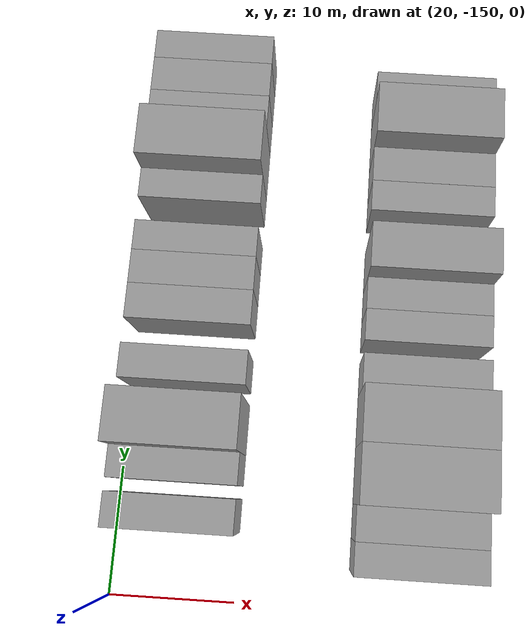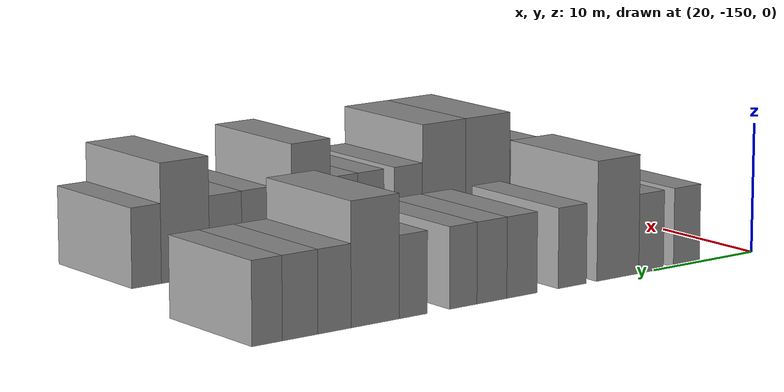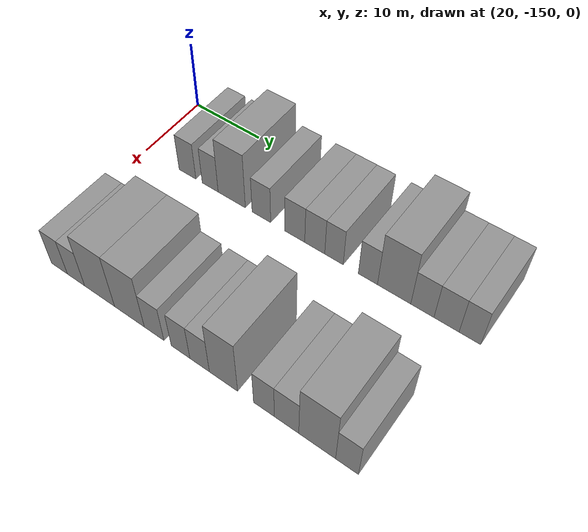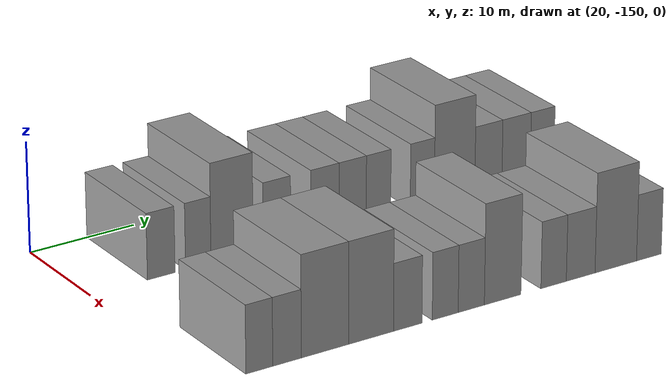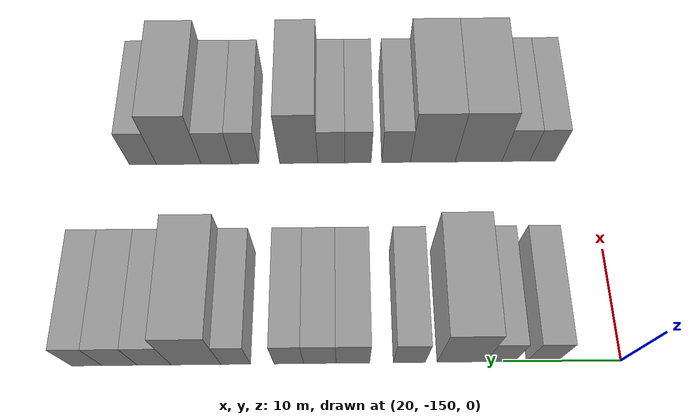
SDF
<sdf version="1.6">
 <world name="default">
  <model name="building_12">
   <static>1</static>
   <pose>25.0000 -143.2816 0 0.000000 0.000000 0.000000</pose>
   <link name="link">
    <pose>0 0 3.00 0 0 0</pose>
    <collision name="collision"><geometry><box><size>10.0000 2.6540 6.0000</size></box></geometry></collision>
    <visual name="visual">
     <cast_shadows>0</cast_shadows>
     <geometry><box><size>10.0000 2.6540 6.0000</size></box></geometry>
     <material>
      <script>
       <uri>model://grey_wall/materials/scripts</uri>
       <uri>model://grey_wall/materials/textures</uri>
       <name>vrc/grey_wall</name>
      </script>
     </material>
    </visual>
   </link>
  </model>
  <model name="building_13">
   <static>1</static>
   <pose>25.0000 -139.7228 0 0.000000 0.000000 0.000000</pose>
   <link name="link">
    <pose>0 0 3.00 0 0 0</pose>
    <collision name="collision"><geometry><box><size>10.0000 2.4635 6.0000</size></box></geometry></collision>
    <visual name="visual">
     <cast_shadows>0</cast_shadows>
     <geometry><box><size>10.0000 2.4635 6.0000</size></box></geometry>
     <material>
      <script>
       <uri>model://grey_wall/materials/scripts</uri>
       <uri>model://grey_wall/materials/textures</uri>
       <name>vrc/grey_wall</name>
      </script>
     </material>
    </visual>
   </link>
  </model>
  <model name="building_14">
   <static>1</static>
   <pose>25.0000 -136.4352 0 0.000000 0.000000 0.000000</pose>
   <link name="link">
    <pose>0 0 4.50 0 0 0</pose>
    <collision name="collision"><geometry><box><size>10.0000 4.1118 9.0000</size></box></geometry></collision>
    <visual name="visual">
     <cast_shadows>0</cast_shadows>
     <geometry><box><size>10.0000 4.1118 9.0000</size></box></geometry>
     <material>
      <script>
       <uri>model://grey_wall/materials/scripts</uri>
       <uri>model://grey_wall/materials/textures</uri>
       <name>vrc/grey_wall</name>
      </script>
     </material>
    </visual>
   </link>
  </model>
  <model name="building_15">
   <static>1</static>
   <pose>25.0000 -132.0211 0 0.000000 0.000000 0.000000</pose>
   <link name="link">
    <pose>0 0 3.00 0 0 0</pose>
    <collision name="collision"><geometry><box><size>10.0000 2.7164 6.0000</size></box></geometry></collision>
    <visual name="visual">
     <cast_shadows>0</cast_shadows>
     <geometry><box><size>10.0000 2.7164 6.0000</size></box></geometry>
     <material>
      <script>
       <uri>model://grey_wall/materials/scripts</uri>
       <uri>model://grey_wall/materials/textures</uri>
       <name>vrc/grey_wall</name>
      </script>
     </material>
    </visual>
   </link>
  </model>
  <model name="building_16">
   <static>1</static>
   <pose>25.0000 -127.2485 0 0.000000 0.000000 0.000000</pose>
   <link name="link">
    <pose>0 0 3.00 0 0 0</pose>
    <collision name="collision"><geometry><box><size>10.0000 2.8289 6.0000</size></box></geometry></collision>
    <visual name="visual">
     <cast_shadows>0</cast_shadows>
     <geometry><box><size>10.0000 2.8289 6.0000</size></box></geometry>
     <material>
      <script>
       <uri>model://grey_wall/materials/scripts</uri>
       <uri>model://grey_wall/materials/textures</uri>
       <name>vrc/grey_wall</name>
      </script>
     </material>
    </visual>
   </link>
  </model>
  <model name="building_17">
   <static>1</static>
   <pose>25.0000 -124.4557 0 0.000000 0.000000 0.000000</pose>
   <link name="link">
    <pose>0 0 3.00 0 0 0</pose>
    <collision name="collision"><geometry><box><size>10.0000 2.7568 6.0000</size></box></geometry></collision>
    <visual name="visual">
     <cast_shadows>0</cast_shadows>
     <geometry><box><size>10.0000 2.7568 6.0000</size></box></geometry>
     <material>
      <script>
       <uri>model://grey_wall/materials/scripts</uri>
       <uri>model://grey_wall/materials/textures</uri>
       <name>vrc/grey_wall</name>
      </script>
     </material>
    </visual>
   </link>
  </model>
  <model name="building_18">
   <static>1</static>
   <pose>25.0000 -121.8323 0 0.000000 0.000000 0.000000</pose>
   <link name="link">
    <pose>0 0 3.00 0 0 0</pose>
    <collision name="collision"><geometry><box><size>10.0000 2.4898 6.0000</size></box></geometry></collision>
    <visual name="visual">
     <cast_shadows>0</cast_shadows>
     <geometry><box><size>10.0000 2.4898 6.0000</size></box></geometry>
     <material>
      <script>
       <uri>model://grey_wall/materials/scripts</uri>
       <uri>model://grey_wall/materials/textures</uri>
       <name>vrc/grey_wall</name>
      </script>
     </material>
    </visual>
   </link>
  </model>
  <model name="building_19">
   <static>1</static>
   <pose>25.0000 -117.3427 0 0.000000 0.000000 0.000000</pose>
   <link name="link">
    <pose>0 0 3.00 0 0 0</pose>
    <collision name="collision"><geometry><box><size>10.0000 2.4895 6.0000</size></box></geometry></collision>
    <visual name="visual">
     <cast_shadows>0</cast_shadows>
     <geometry><box><size>10.0000 2.4895 6.0000</size></box></geometry>
     <material>
      <script>
       <uri>model://grey_wall/materials/scripts</uri>
       <uri>model://grey_wall/materials/textures</uri>
       <name>vrc/grey_wall</name>
      </script>
     </material>
    </visual>
   </link>
  </model>
  <model name="building_20">
   <static>1</static>
   <pose>25.0000 -113.9905 0 0.000000 0.000000 0.000000</pose>
   <link name="link">
    <pose>0 0 4.50 0 0 0</pose>
    <collision name="collision"><geometry><box><size>10.0000 4.2148 9.0000</size></box></geometry></collision>
    <visual name="visual">
     <cast_shadows>0</cast_shadows>
     <geometry><box><size>10.0000 4.2148 9.0000</size></box></geometry>
     <material>
      <script>
       <uri>model://grey_wall/materials/scripts</uri>
       <uri>model://grey_wall/materials/textures</uri>
       <name>vrc/grey_wall</name>
      </script>
     </material>
    </visual>
   </link>
  </model>
  <model name="building_21">
   <static>1</static>
   <pose>25.0000 -110.4575 0 0.000000 0.000000 0.000000</pose>
   <link name="link">
    <pose>0 0 3.00 0 0 0</pose>
    <collision name="collision"><geometry><box><size>10.0000 2.8513 6.0000</size></box></geometry></collision>
    <visual name="visual">
     <cast_shadows>0</cast_shadows>
     <geometry><box><size>10.0000 2.8513 6.0000</size></box></geometry>
     <material>
      <script>
       <uri>model://grey_wall/materials/scripts</uri>
       <uri>model://grey_wall/materials/textures</uri>
       <name>vrc/grey_wall</name>
      </script>
     </material>
    </visual>
   </link>
  </model>
  <model name="building_22">
   <static>1</static>
   <pose>25.0000 -107.5320 0 0.000000 0.000000 0.000000</pose>
   <link name="link">
    <pose>0 0 3.00 0 0 0</pose>
    <collision name="collision"><geometry><box><size>10.0000 2.9997 6.0000</size></box></geometry></collision>
    <visual name="visual">
     <cast_shadows>0</cast_shadows>
     <geometry><box><size>10.0000 2.9997 6.0000</size></box></geometry>
     <material>
      <script>
       <uri>model://grey_wall/materials/scripts</uri>
       <uri>model://grey_wall/materials/textures</uri>
       <name>vrc/grey_wall</name>
      </script>
     </material>
    </visual>
   </link>
  </model>
  <model name="building_23">
   <static>1</static>
   <pose>25.0000 -104.7620 0 0.000000 0.000000 0.000000</pose>
   <link name="link">
    <pose>0 0 3.00 0 0 0</pose>
    <collision name="collision"><geometry><box><size>10.0000 2.5403 6.0000</size></box></geometry></collision>
    <visual name="visual">
     <cast_shadows>0</cast_shadows>
     <geometry><box><size>10.0000 2.5403 6.0000</size></box></geometry>
     <material>
      <script>
       <uri>model://grey_wall/materials/scripts</uri>
       <uri>model://grey_wall/materials/textures</uri>
       <name>vrc/grey_wall</name>
      </script>
     </material>
    </visual>
   </link>
  </model>
  <model name="building_105">
   <static>1</static>
   <pose>44.0000 -145.6554 0 0.000000 0.000000 0.000000</pose>
   <link name="link">
    <pose>0 0 3.00 0 0 0</pose>
    <collision name="collision"><geometry><box><size>10.0000 2.4858 6.0000</size></box></geometry></collision>
    <visual name="visual">
     <cast_shadows>0</cast_shadows>
     <geometry><box><size>10.0000 2.4858 6.0000</size></box></geometry>
     <material>
      <script>
       <uri>model://grey_wall/materials/scripts</uri>
       <uri>model://grey_wall/materials/textures</uri>
       <name>vrc/grey_wall</name>
      </script>
     </material>
    </visual>
   </link>
  </model>
  <model name="building_106">
   <static>1</static>
   <pose>44.0000 -143.0840 0 0.000000 0.000000 0.000000</pose>
   <link name="link">
    <pose>0 0 3.00 0 0 0</pose>
    <collision name="collision"><geometry><box><size>10.0000 2.6570 6.0000</size></box></geometry></collision>
    <visual name="visual">
     <cast_shadows>0</cast_shadows>
     <geometry><box><size>10.0000 2.6570 6.0000</size></box></geometry>
     <material>
      <script>
       <uri>model://grey_wall/materials/scripts</uri>
       <uri>model://grey_wall/materials/textures</uri>
       <name>vrc/grey_wall</name>
      </script>
     </material>
    </visual>
   </link>
  </model>
  <model name="building_107">
   <static>1</static>
   <pose>44.0000 -139.5236 0 0.000000 0.000000 0.000000</pose>
   <link name="link">
    <pose>0 0 4.50 0 0 0</pose>
    <collision name="collision"><geometry><box><size>10.0000 4.4638 9.0000</size></box></geometry></collision>
    <visual name="visual">
     <cast_shadows>0</cast_shadows>
     <geometry><box><size>10.0000 4.4638 9.0000</size></box></geometry>
     <material>
      <script>
       <uri>model://grey_wall/materials/scripts</uri>
       <uri>model://grey_wall/materials/textures</uri>
       <name>vrc/grey_wall</name>
      </script>
     </material>
    </visual>
   </link>
  </model>
  <model name="building_108">
   <static>1</static>
   <pose>44.0000 -135.1486 0 0.000000 0.000000 0.000000</pose>
   <link name="link">
    <pose>0 0 4.50 0 0 0</pose>
    <collision name="collision"><geometry><box><size>10.0000 4.2860 9.0000</size></box></geometry></collision>
    <visual name="visual">
     <cast_shadows>0</cast_shadows>
     <geometry><box><size>10.0000 4.2860 9.0000</size></box></geometry>
     <material>
      <script>
       <uri>model://grey_wall/materials/scripts</uri>
       <uri>model://grey_wall/materials/textures</uri>
       <name>vrc/grey_wall</name>
      </script>
     </material>
    </visual>
   </link>
  </model>
  <model name="building_109">
   <static>1</static>
   <pose>44.0000 -131.6345 0 0.000000 0.000000 0.000000</pose>
   <link name="link">
    <pose>0 0 3.00 0 0 0</pose>
    <collision name="collision"><geometry><box><size>10.0000 2.7424 6.0000</size></box></geometry></collision>
    <visual name="visual">
     <cast_shadows>0</cast_shadows>
     <geometry><box><size>10.0000 2.7424 6.0000</size></box></geometry>
     <material>
      <script>
       <uri>model://grey_wall/materials/scripts</uri>
       <uri>model://grey_wall/materials/textures</uri>
       <name>vrc/grey_wall</name>
      </script>
     </material>
    </visual>
   </link>
  </model>
  <model name="building_110">
   <static>1</static>
   <pose>44.0000 -127.9995 0 0.000000 0.000000 0.000000</pose>
   <link name="link">
    <pose>0 0 3.00 0 0 0</pose>
    <collision name="collision"><geometry><box><size>10.0000 2.5275 6.0000</size></box></geometry></collision>
    <visual name="visual">
     <cast_shadows>0</cast_shadows>
     <geometry><box><size>10.0000 2.5275 6.0000</size></box></geometry>
     <material>
      <script>
       <uri>model://grey_wall/materials/scripts</uri>
       <uri>model://grey_wall/materials/textures</uri>
       <name>vrc/grey_wall</name>
      </script>
     </material>
    </visual>
   </link>
  </model>
  <model name="building_111">
   <static>1</static>
   <pose>44.0000 -125.4479 0 0.000000 0.000000 0.000000</pose>
   <link name="link">
    <pose>0 0 3.00 0 0 0</pose>
    <collision name="collision"><geometry><box><size>10.0000 2.5758 6.0000</size></box></geometry></collision>
    <visual name="visual">
     <cast_shadows>0</cast_shadows>
     <geometry><box><size>10.0000 2.5758 6.0000</size></box></geometry>
     <material>
      <script>
       <uri>model://grey_wall/materials/scripts</uri>
       <uri>model://grey_wall/materials/textures</uri>
       <name>vrc/grey_wall</name>
      </script>
     </material>
    </visual>
   </link>
  </model>
  <model name="building_112">
   <static>1</static>
   <pose>44.0000 -122.3434 0 0.000000 0.000000 0.000000</pose>
   <link name="link">
    <pose>0 0 4.50 0 0 0</pose>
    <collision name="collision"><geometry><box><size>10.0000 3.6330 9.0000</size></box></geometry></collision>
    <visual name="visual">
     <cast_shadows>0</cast_shadows>
     <geometry><box><size>10.0000 3.6330 9.0000</size></box></geometry>
     <material>
      <script>
       <uri>model://grey_wall/materials/scripts</uri>
       <uri>model://grey_wall/materials/textures</uri>
       <name>vrc/grey_wall</name>
      </script>
     </material>
    </visual>
   </link>
  </model>
  <model name="building_113">
   <static>1</static>
   <pose>44.0000 -117.2456 0 0.000000 0.000000 0.000000</pose>
   <link name="link">
    <pose>0 0 3.00 0 0 0</pose>
    <collision name="collision"><geometry><box><size>10.0000 2.5627 6.0000</size></box></geometry></collision>
    <visual name="visual">
     <cast_shadows>0</cast_shadows>
     <geometry><box><size>10.0000 2.5627 6.0000</size></box></geometry>
     <material>
      <script>
       <uri>model://grey_wall/materials/scripts</uri>
       <uri>model://grey_wall/materials/textures</uri>
       <name>vrc/grey_wall</name>
      </script>
     </material>
    </visual>
   </link>
  </model>
  <model name="building_114">
   <static>1</static>
   <pose>44.0000 -114.5033 0 0.000000 0.000000 0.000000</pose>
   <link name="link">
    <pose>0 0 3.00 0 0 0</pose>
    <collision name="collision"><geometry><box><size>10.0000 2.9218 6.0000</size></box></geometry></collision>
    <visual name="visual">
     <cast_shadows>0</cast_shadows>
     <geometry><box><size>10.0000 2.9218 6.0000</size></box></geometry>
     <material>
      <script>
       <uri>model://grey_wall/materials/scripts</uri>
       <uri>model://grey_wall/materials/textures</uri>
       <name>vrc/grey_wall</name>
      </script>
     </material>
    </visual>
   </link>
  </model>
  <model name="building_115">
   <static>1</static>
   <pose>44.0000 -110.9093 0 0.000000 0.000000 0.000000</pose>
   <link name="link">
    <pose>0 0 4.50 0 0 0</pose>
    <collision name="collision"><geometry><box><size>10.0000 4.2661 9.0000</size></box></geometry></collision>
    <visual name="visual">
     <cast_shadows>0</cast_shadows>
     <geometry><box><size>10.0000 4.2661 9.0000</size></box></geometry>
     <material>
      <script>
       <uri>model://grey_wall/materials/scripts</uri>
       <uri>model://grey_wall/materials/textures</uri>
       <name>vrc/grey_wall</name>
      </script>
     </material>
    </visual>
   </link>
  </model>
  <model name="building_116">
   <static>1</static>
   <pose>44.0000 -107.4908 0 0.000000 0.000000 0.000000</pose>
   <link name="link">
    <pose>0 0 3.00 0 0 0</pose>
    <collision name="collision"><geometry><box><size>10.0000 2.5709 6.0000</size></box></geometry></collision>
    <visual name="visual">
     <cast_shadows>0</cast_shadows>
     <geometry><box><size>10.0000 2.5709 6.0000</size></box></geometry>
     <material>
      <script>
       <uri>model://grey_wall/materials/scripts</uri>
       <uri>model://grey_wall/materials/textures</uri>
       <name>vrc/grey_wall</name>
      </script>
     </material>
    </visual>
   </link>
  </model>
 </world>
</sdf>
